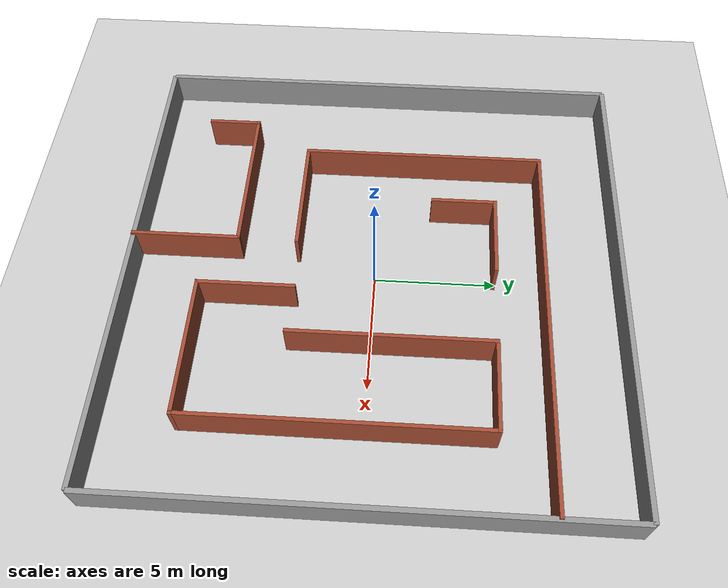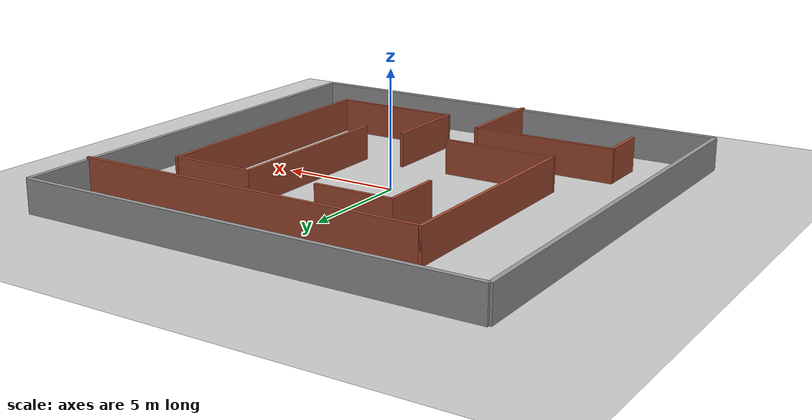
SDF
<sdf version="1.9">
 <world name="default">
  <physics name="1ms" type="ignored">
   <max_step_size>0.001</max_step_size>
   <real_time_factor>1.0</real_time_factor>
  </physics>
  <plugin filename="ignition-gazebo-physics-system" name="gz::sim::systems::Physics"/>
  <plugin filename="ignition-gazebo-sensors-system" name="gz::sim::systems::Sensors">
   <render_engine>ogre</render_engine>
  </plugin>
  <plugin filename="ignition-gazebo-user-commands-system" name="gz::sim::systems::UserCommands"/>
  <plugin filename="ignition-gazebo-scene-broadcaster-system" name="gz::sim::systems::SceneBroadcaster"/>
  <light name="sun" type="directional">
   <cast_shadows>0</cast_shadows>
   <pose>0 0 10 0 -0 0</pose>
   <diffuse>0.8 0.8 0.8 1</diffuse>
   <specular>0.1 0.1 0.1 1</specular>
   <attenuation>
    <range>1000</range>
    <constant>0.9</constant>
    <linear>0.01</linear>
    <quadratic>0.001</quadratic>
   </attenuation>
   <direction>-0.5 0.5 -1</direction>
   <spot><inner_angle>0</inner_angle><outer_angle>0</outer_angle><falloff>0</falloff></spot>
  </light>
  <model name="ground_plane">
   <static>1</static>
   <link name="link">
    <collision name="collision">
     <geometry><plane><normal>0 0 1</normal><size>100 100</size></plane></geometry>
     <surface><friction><ode><mu>100</mu><mu2>50</mu2></ode></friction></surface>
    </collision>
    <visual name="visual">
     <cast_shadows>0</cast_shadows>
     <geometry><plane><normal>0 0 1</normal><size>100 100</size></plane></geometry>
     <material>
      <script><uri>file://media/materials/scripts/gazebo.material</uri><name>Gazebo/Grey</name></script>
     </material>
    </visual>
   </link>
  </model>
  <gravity>0 0 -9.8</gravity>
  <magnetic_field>6e-06 2.3e-05 -4.2e-05</magnetic_field>
  <atmosphere type="adiabatic"/>
  <physics name="default_physics" default="0" type="ode">
   <max_step_size>0.001</max_step_size>
   <real_time_factor>1</real_time_factor>
   <real_time_update_rate>1000</real_time_update_rate>
  </physics>
  <scene><ambient>0.4 0.4 0.4 1</ambient><background>0.7 0.7 0.7 1</background><shadows>1</shadows></scene>
  <spherical_coordinates>
   <surface_model>EARTH_WGS84</surface_model>
   <latitude_deg>0</latitude_deg>
   <longitude_deg>0</longitude_deg>
   <elevation>0</elevation>
   <heading_deg>0</heading_deg>
  </spherical_coordinates>
  <model name="grey_wall_1">
   <link name="link">
    <inertial>
     <mass>1</mass>
     <inertia><ixx>1</ixx><ixy>0</ixy><ixz>0</ixz><iyy>1</iyy><iyz>0</iyz><izz>1</izz></inertia>
    </inertial>
    <visual name="visual">
     <cast_shadows>0</cast_shadows>
     <geometry><box><size>20 0.2 2.8</size></box></geometry>
     <material>
      <script>
       <uri>model://grey_wall/materials/scripts</uri>
       <uri>model://grey_wall/materials/textures</uri>
       <name>vrc/grey_wall</name>
      </script>
      <ambient>1 1 1 1</ambient>
      <diffuse>1 1 1 1</diffuse>
      <specular>0 0 0 1</specular>
      <emissive>0 0 0 1</emissive>
      <shader type="vertex"><normal_map>__default__</normal_map></shader>
     </material>
    </visual>
    <collision name="collision">
     <geometry><box><size>20 0.2 2.8</size></box></geometry>
     <surface>
      <friction>
       <ode><mu>1</mu><mu2>1</mu2><fdir1>0 0 0</fdir1><slip1>0</slip1><slip2>0</slip2></ode>
       <torsional>
        <coefficient>1</coefficient>
        <patch_radius>0</patch_radius>
        <surface_radius>0</surface_radius>
        <use_patch_radius>1</use_patch_radius>
        <ode><slip>0</slip></ode>
       </torsional>
      </friction>
      <bounce><restitution_coefficient>0</restitution_coefficient><threshold>1e+06</threshold></bounce>
      <contact>
       <collide_without_contact>0</collide_without_contact>
       <collide_without_contact_bitmask>1</collide_without_contact_bitmask>
       <collide_bitmask>1</collide_bitmask>
       <ode>
        <soft_cfm>0</soft_cfm>
        <soft_erp>0.2</soft_erp>
        <kp>1e+13</kp>
        <kd>1</kd>
        <max_vel>0.01</max_vel>
        <min_depth>0</min_depth>
       </ode>
       <bullet>
        <split_impulse>1</split_impulse>
        <split_impulse_penetration_threshold>-0.01</split_impulse_penetration_threshold>
        <soft_cfm>0</soft_cfm>
        <soft_erp>0.2</soft_erp>
        <kp>1e+13</kp>
        <kd>1</kd>
       </bullet>
      </contact>
     </surface>
    </collision>
   </link>
   <static>1</static>
   <pose>0 10 0 0 -0 0</pose>
  </model>
  <model name="grey_wall_2">
   <link name="link">
    <inertial>
     <mass>1</mass>
     <inertia><ixx>1</ixx><ixy>0</ixy><ixz>0</ixz><iyy>1</iyy><iyz>0</iyz><izz>1</izz></inertia>
    </inertial>
    <visual name="visual">
     <cast_shadows>0</cast_shadows>
     <geometry><box><size>20 0.2 2.8</size></box></geometry>
     <material>
      <script>
       <uri>model://grey_wall/materials/scripts</uri>
       <uri>model://grey_wall/materials/textures</uri>
       <name>vrc/grey_wall</name>
      </script>
      <ambient>1 1 1 1</ambient>
      <diffuse>1 1 1 1</diffuse>
      <specular>0 0 0 1</specular>
      <emissive>0 0 0 1</emissive>
      <shader type="vertex"><normal_map>__default__</normal_map></shader>
     </material>
    </visual>
    <collision name="collision">
     <geometry><box><size>20 0.2 2.8</size></box></geometry>
     <surface>
      <friction>
       <ode><mu>1</mu><mu2>1</mu2><fdir1>0 0 0</fdir1><slip1>0</slip1><slip2>0</slip2></ode>
       <torsional>
        <coefficient>1</coefficient>
        <patch_radius>0</patch_radius>
        <surface_radius>0</surface_radius>
        <use_patch_radius>1</use_patch_radius>
        <ode><slip>0</slip></ode>
       </torsional>
      </friction>
      <bounce><restitution_coefficient>0</restitution_coefficient><threshold>1e+06</threshold></bounce>
      <contact>
       <collide_without_contact>0</collide_without_contact>
       <collide_without_contact_bitmask>1</collide_without_contact_bitmask>
       <collide_bitmask>1</collide_bitmask>
       <ode>
        <soft_cfm>0</soft_cfm>
        <soft_erp>0.2</soft_erp>
        <kp>1e+13</kp>
        <kd>1</kd>
        <max_vel>0.01</max_vel>
        <min_depth>0</min_depth>
       </ode>
       <bullet>
        <split_impulse>1</split_impulse>
        <split_impulse_penetration_threshold>-0.01</split_impulse_penetration_threshold>
        <soft_cfm>0</soft_cfm>
        <soft_erp>0.2</soft_erp>
        <kp>1e+13</kp>
        <kd>1</kd>
       </bullet>
      </contact>
     </surface>
    </collision>
   </link>
   <static>1</static>
   <pose>0 -10 0 0 -0 0</pose>
  </model>
  <model name="grey_wall_3">
   <link name="link">
    <inertial>
     <mass>1</mass>
     <inertia><ixx>1</ixx><ixy>0</ixy><ixz>0</ixz><iyy>1</iyy><iyz>0</iyz><izz>1</izz></inertia>
    </inertial>
    <visual name="visual">
     <cast_shadows>0</cast_shadows>
     <geometry><box><size>20 0.2 2.8</size></box></geometry>
     <material>
      <script>
       <uri>model://grey_wall/materials/scripts</uri>
       <uri>model://grey_wall/materials/textures</uri>
       <name>vrc/grey_wall</name>
      </script>
      <ambient>1 1 1 1</ambient>
      <diffuse>1 1 1 1</diffuse>
      <specular>0 0 0 1</specular>
      <emissive>0 0 0 1</emissive>
      <shader type="vertex"><normal_map>__default__</normal_map></shader>
     </material>
    </visual>
    <collision name="collision">
     <geometry><box><size>20 0.2 2.8</size></box></geometry>
     <surface>
      <friction>
       <ode><mu>1</mu><mu2>1</mu2><fdir1>0 0 0</fdir1><slip1>0</slip1><slip2>0</slip2></ode>
       <torsional>
        <coefficient>1</coefficient>
        <patch_radius>0</patch_radius>
        <surface_radius>0</surface_radius>
        <use_patch_radius>1</use_patch_radius>
        <ode><slip>0</slip></ode>
       </torsional>
      </friction>
      <bounce><restitution_coefficient>0</restitution_coefficient><threshold>1e+06</threshold></bounce>
      <contact>
       <collide_without_contact>0</collide_without_contact>
       <collide_without_contact_bitmask>1</collide_without_contact_bitmask>
       <collide_bitmask>1</collide_bitmask>
       <ode>
        <soft_cfm>0</soft_cfm>
        <soft_erp>0.2</soft_erp>
        <kp>1e+13</kp>
        <kd>1</kd>
        <max_vel>0.01</max_vel>
        <min_depth>0</min_depth>
       </ode>
       <bullet>
        <split_impulse>1</split_impulse>
        <split_impulse_penetration_threshold>-0.01</split_impulse_penetration_threshold>
        <soft_cfm>0</soft_cfm>
        <soft_erp>0.2</soft_erp>
        <kp>1e+13</kp>
        <kd>1</kd>
       </bullet>
      </contact>
     </surface>
    </collision>
   </link>
   <static>1</static>
   <pose>-10 0 0 0 0 -1.5708</pose>
  </model>
  <model name="grey_wall_4">
   <link name="link">
    <inertial>
     <mass>1</mass>
     <inertia><ixx>1</ixx><ixy>0</ixy><ixz>0</ixz><iyy>1</iyy><iyz>0</iyz><izz>1</izz></inertia>
    </inertial>
    <visual name="visual">
     <cast_shadows>0</cast_shadows>
     <geometry><box><size>20 0.2 2.8</size></box></geometry>
     <material>
      <script>
       <uri>model://grey_wall/materials/scripts</uri>
       <uri>model://grey_wall/materials/textures</uri>
       <name>vrc/grey_wall</name>
      </script>
      <ambient>1 1 1 1</ambient>
      <diffuse>1 1 1 1</diffuse>
      <specular>0 0 0 1</specular>
      <emissive>0 0 0 1</emissive>
      <shader type="vertex"><normal_map>__default__</normal_map></shader>
     </material>
    </visual>
    <collision name="collision">
     <geometry><box><size>20 0.2 2.8</size></box></geometry>
     <surface>
      <friction>
       <ode><mu>1</mu><mu2>1</mu2><fdir1>0 0 0</fdir1><slip1>0</slip1><slip2>0</slip2></ode>
       <torsional>
        <coefficient>1</coefficient>
        <patch_radius>0</patch_radius>
        <surface_radius>0</surface_radius>
        <use_patch_radius>1</use_patch_radius>
        <ode><slip>0</slip></ode>
       </torsional>
      </friction>
      <bounce><restitution_coefficient>0</restitution_coefficient><threshold>1e+06</threshold></bounce>
      <contact>
       <collide_without_contact>0</collide_without_contact>
       <collide_without_contact_bitmask>1</collide_without_contact_bitmask>
       <collide_bitmask>1</collide_bitmask>
       <ode>
        <soft_cfm>0</soft_cfm>
        <soft_erp>0.2</soft_erp>
        <kp>1e+13</kp>
        <kd>1</kd>
        <max_vel>0.01</max_vel>
        <min_depth>0</min_depth>
       </ode>
       <bullet>
        <split_impulse>1</split_impulse>
        <split_impulse_penetration_threshold>-0.01</split_impulse_penetration_threshold>
        <soft_cfm>0</soft_cfm>
        <soft_erp>0.2</soft_erp>
        <kp>1e+13</kp>
        <kd>1</kd>
       </bullet>
      </contact>
     </surface>
    </collision>
   </link>
   <static>1</static>
   <pose>10 0 0 0 -0 1.5708</pose>
  </model>
  <model name="maze">
   <pose>1.384 -1.5665 0 0 -0 0</pose>
   <link name="Wall_0">
    <collision name="Wall_0_Collision">
     <geometry><box><size>5 0.15 1.5</size></box></geometry>
     <pose>0 0 0.75 0 -0 0</pose>
    </collision>
    <visual name="Wall_0_Visual">
     <pose>0 0 0.75 0 -0 0</pose>
     <geometry><box><size>5 0.15 1.5</size></box></geometry>
     <material>
      <script><uri>file://media/materials/scripts/gazebo.material</uri><name>Gazebo/Bricks</name></script>
      <ambient>1 1 1 1</ambient>
     </material>
     <meta><layer>0</layer></meta>
    </visual>
    <pose>-4.619 -1.6635 0 0 -0 3.14159</pose>
   </link>
   <link name="Wall_1">
    <collision name="Wall_1_Collision">
     <geometry><box><size>10.25 0.15 1.5</size></box></geometry>
     <pose>0 0 0.75 0 -0 0</pose>
    </collision>
    <visual name="Wall_1_Visual">
     <pose>0 0 0.75 0 -0 0</pose>
     <geometry><box><size>10.25 0.15 1.5</size></box></geometry>
     <material>
      <script><uri>file://media/materials/scripts/gazebo.material</uri><name>Gazebo/Bricks</name></script>
      <ambient>1 1 1 1</ambient>
     </material>
     <meta><layer>0</layer></meta>
    </visual>
    <pose>-7.044 3.3865 0 0 -0 1.5708</pose>
   </link>
   <link name="Wall_10">
    <collision name="Wall_10_Collision">
     <geometry><box><size>4.5 0.15 1.5</size></box></geometry>
     <pose>0 0 0.75 0 -0 0</pose>
    </collision>
    <visual name="Wall_10_Visual">
     <pose>0 0 0.75 0 -0 0</pose>
     <geometry><box><size>4.5 0.15 1.5</size></box></geometry>
     <material>
      <script><uri>file://media/materials/scripts/gazebo.material</uri><name>Gazebo/Bricks</name></script>
      <ambient>1 1 1 1</ambient>
     </material>
     <meta><layer>0</layer></meta>
    </visual>
    <pose>-2.206 -6.2615 0 0 -0 -1.5708</pose>
   </link>
   <link name="Wall_13">
    <collision name="Wall_13_Collision">
     <geometry><box><size>6.5 0.15 1.5</size></box></geometry>
     <pose>0 0 0.75 0 -0 0</pose>
    </collision>
    <visual name="Wall_13_Visual">
     <pose>0 0 0.75 0 -0 0</pose>
     <geometry><box><size>6.5 0.15 1.5</size></box></geometry>
     <material>
      <script><uri>file://media/materials/scripts/gazebo.material</uri><name>Gazebo/Bricks</name></script>
      <ambient>1 1 1 1</ambient>
     </material>
     <meta><layer>0</layer></meta>
    </visual>
    <pose>-5.381 -4.0865 0 0 -0 3.14159</pose>
   </link>
   <link name="Wall_14">
    <collision name="Wall_14_Collision">
     <geometry><box><size>2.25 0.15 1.5</size></box></geometry>
     <pose>0 0 0.75 0 -0 0</pose>
    </collision>
    <visual name="Wall_14_Visual">
     <pose>0 0 0.75 0 -0 0</pose>
     <geometry><box><size>2.25 0.15 1.5</size></box></geometry>
     <material>
      <script><uri>file://media/materials/scripts/gazebo.material</uri><name>Gazebo/Bricks</name></script>
      <ambient>1 1 1 1</ambient>
     </material>
     <meta><layer>0</layer></meta>
    </visual>
    <pose>-8.556 -5.1365 0 0 -0 -1.5708</pose>
   </link>
   <link name="Wall_16">
    <collision name="Wall_16_Collision">
     <geometry><box><size>2.75 0.15 1.5</size></box></geometry>
     <pose>0 0 0.75 0 -0 0</pose>
    </collision>
    <visual name="Wall_16_Visual">
     <pose>0 0 0.75 0 -0 0</pose>
     <geometry><box><size>2.75 0.15 1.5</size></box></geometry>
     <material>
      <script><uri>file://media/materials/scripts/gazebo.material</uri><name>Gazebo/Bricks</name></script>
      <ambient>1 1 1 1</ambient>
     </material>
     <meta><layer>0</layer></meta>
    </visual>
    <pose>-4.614 5.1695 0 0 -0 1.5708</pose>
   </link>
   <link name="Wall_17">
    <collision name="Wall_17_Collision">
     <geometry><box><size>3.5 0.15 1.5</size></box></geometry>
     <pose>0 0 0.75 0 -0 0</pose>
    </collision>
    <visual name="Wall_17_Visual">
     <pose>0 0 0.75 0 -0 0</pose>
     <geometry><box><size>3.5 0.15 1.5</size></box></geometry>
     <material>
      <script><uri>file://media/materials/scripts/gazebo.material</uri><name>Gazebo/Bricks</name></script>
      <ambient>1 1 1 1</ambient>
     </material>
     <meta><layer>0</layer></meta>
    </visual>
    <pose>-2.939 6.4695 0 0 -0 0</pose>
   </link>
   <link name="Wall_2">
    <collision name="Wall_2_Collision">
     <geometry><box><size>15.75 0.15 1.5</size></box></geometry>
     <pose>0 0 0.75 0 -0 0</pose>
    </collision>
    <visual name="Wall_2_Visual">
     <pose>0 0 0.75 0 -0 0</pose>
     <geometry><box><size>15.75 0.15 1.5</size></box></geometry>
     <material>
      <script><uri>file://media/materials/scripts/gazebo.material</uri><name>Gazebo/Bricks</name></script>
      <ambient>1 1 1 1</ambient>
     </material>
     <meta><layer>0</layer></meta>
    </visual>
    <pose>0.756 8.4365 0 0 -0 0</pose>
   </link>
   <link name="Wall_4">
    <collision name="Wall_4_Collision">
     <geometry><box><size>8.25 0.15 1.5</size></box></geometry>
     <pose>0 0 0.75 0 -0 0</pose>
    </collision>
    <visual name="Wall_4_Visual">
     <pose>0 0 0.75 0 -0 0</pose>
     <geometry><box><size>8.25 0.15 1.5</size></box></geometry>
     <material>
      <script><uri>file://media/materials/scripts/gazebo.material</uri><name>Gazebo/Bricks</name></script>
      <ambient>1 1 1 1</ambient>
     </material>
     <meta><layer>0</layer></meta>
    </visual>
    <pose>2.02 2.4085 0 0 -0 1.5708</pose>
   </link>
   <link name="Wall_5">
    <collision name="Wall_5_Collision">
     <geometry><box><size>3.75 0.15 1.5</size></box></geometry>
     <pose>0 0 0.75 0 -0 0</pose>
    </collision>
    <visual name="Wall_5_Visual">
     <pose>0 0 0.75 0 -0 0</pose>
     <geometry><box><size>3.75 0.15 1.5</size></box></geometry>
     <material>
      <script><uri>file://media/materials/scripts/gazebo.material</uri><name>Gazebo/Bricks</name></script>
      <ambient>1 1 1 1</ambient>
     </material>
     <meta><layer>0</layer></meta>
    </visual>
    <pose>3.82 6.4585 0 0 -0 0</pose>
   </link>
   <link name="Wall_6">
    <collision name="Wall_6_Collision">
     <geometry><box><size>12 0.15 1.5</size></box></geometry>
     <pose>0 0 0.75 0 -0 0</pose>
    </collision>
    <visual name="Wall_6_Visual">
     <pose>0 0 0.75 0 -0 0</pose>
     <geometry><box><size>12 0.15 1.5</size></box></geometry>
     <material>
      <script><uri>file://media/materials/scripts/gazebo.material</uri><name>Gazebo/Bricks</name></script>
      <ambient>1 1 1 1</ambient>
     </material>
     <meta><layer>0</layer></meta>
    </visual>
    <pose>5.62 0.5335 0 0 -0 -1.5708</pose>
   </link>
   <link name="Wall_7">
    <collision name="Wall_7_Collision">
     <geometry><box><size>5.75 0.15 1.5</size></box></geometry>
     <pose>0 0 0.75 0 -0 0</pose>
    </collision>
    <visual name="Wall_7_Visual">
     <pose>0 0 0.75 0 -0 0</pose>
     <geometry><box><size>5.75 0.15 1.5</size></box></geometry>
     <material>
      <script><uri>file://media/materials/scripts/gazebo.material</uri><name>Gazebo/Bricks</name></script>
      <ambient>1 1 1 1</ambient>
     </material>
     <meta><layer>0</layer></meta>
    </visual>
    <pose>2.82 -5.3915 0 0 -0 3.14159</pose>
   </link>
   <link name="Wall_8">
    <collision name="Wall_8_Collision">
     <geometry><box><size>4 0.15 1.5</size></box></geometry>
     <pose>0 0 0.75 0 -0 0</pose>
    </collision>
    <visual name="Wall_8_Visual">
     <pose>0 0 0.75 0 -0 0</pose>
     <geometry><box><size>4 0.15 1.5</size></box></geometry>
     <material>
      <script><uri>file://media/materials/scripts/gazebo.material</uri><name>Gazebo/Bricks</name></script>
      <ambient>1 1 1 1</ambient>
     </material>
     <meta><layer>0</layer></meta>
    </visual>
    <pose>0.02 -3.4665 0 0 -0 1.5708</pose>
   </link>
   <static>1</static>
  </model>
 </world>
</sdf>
